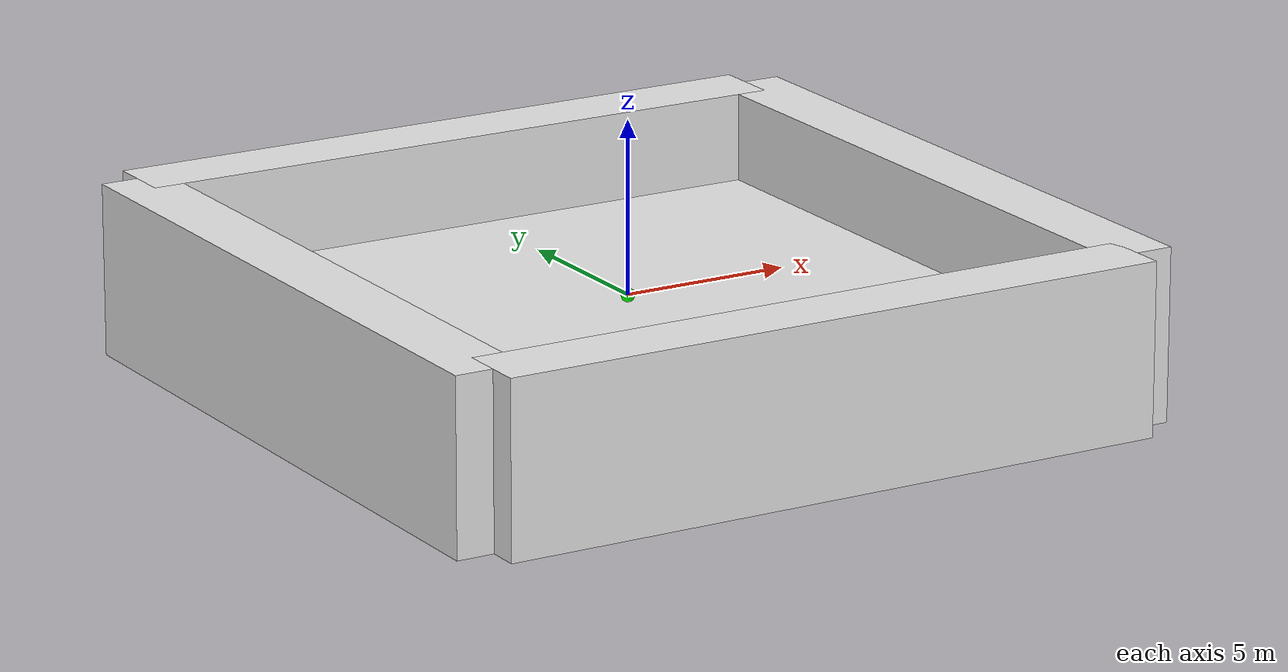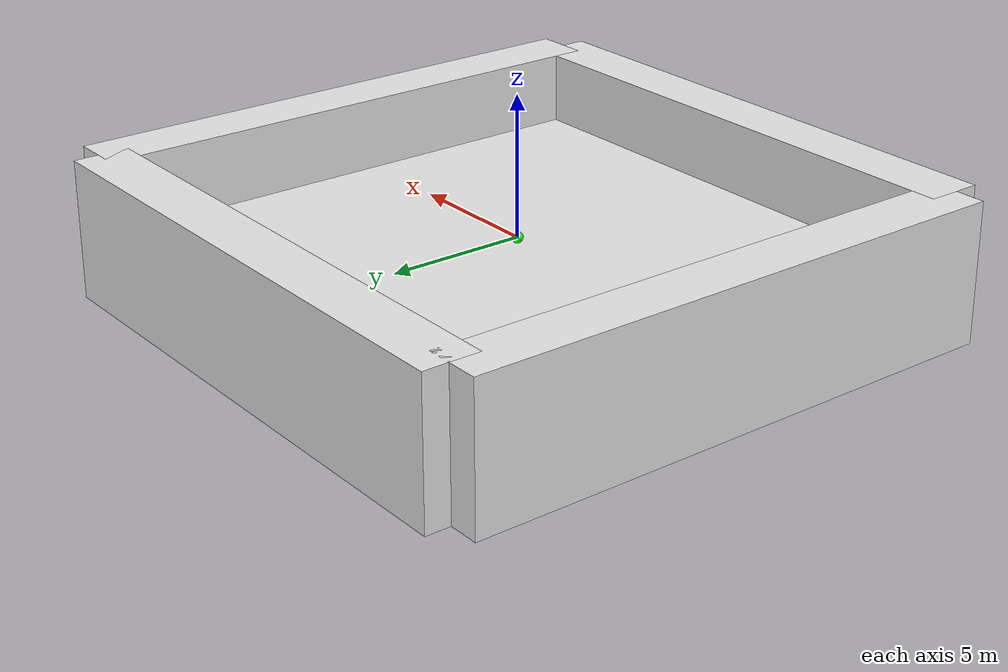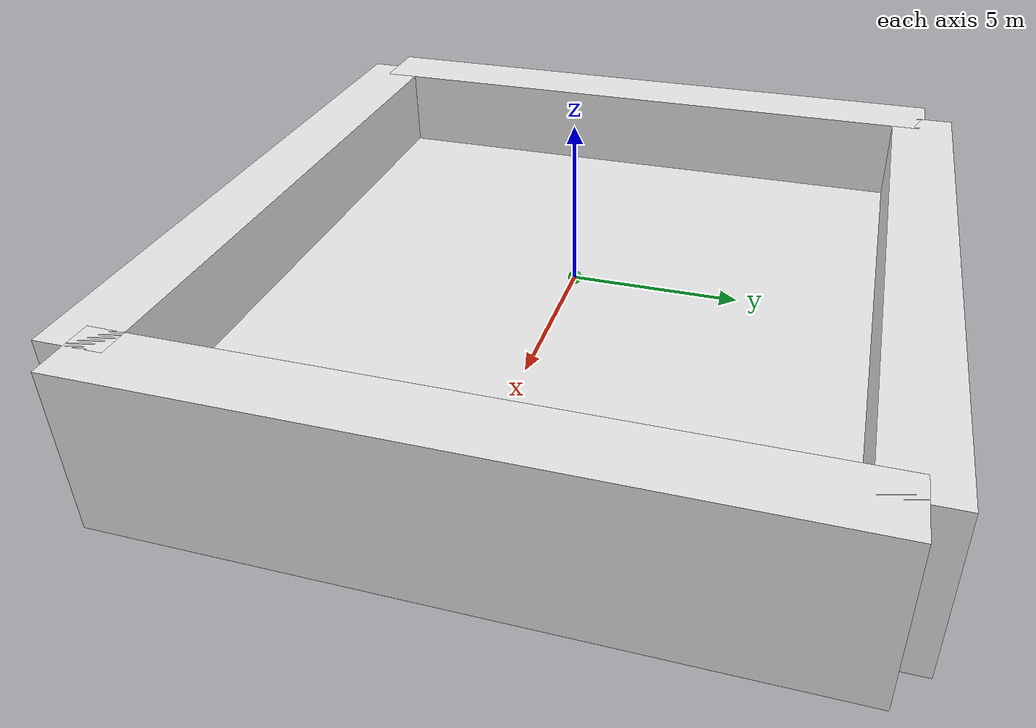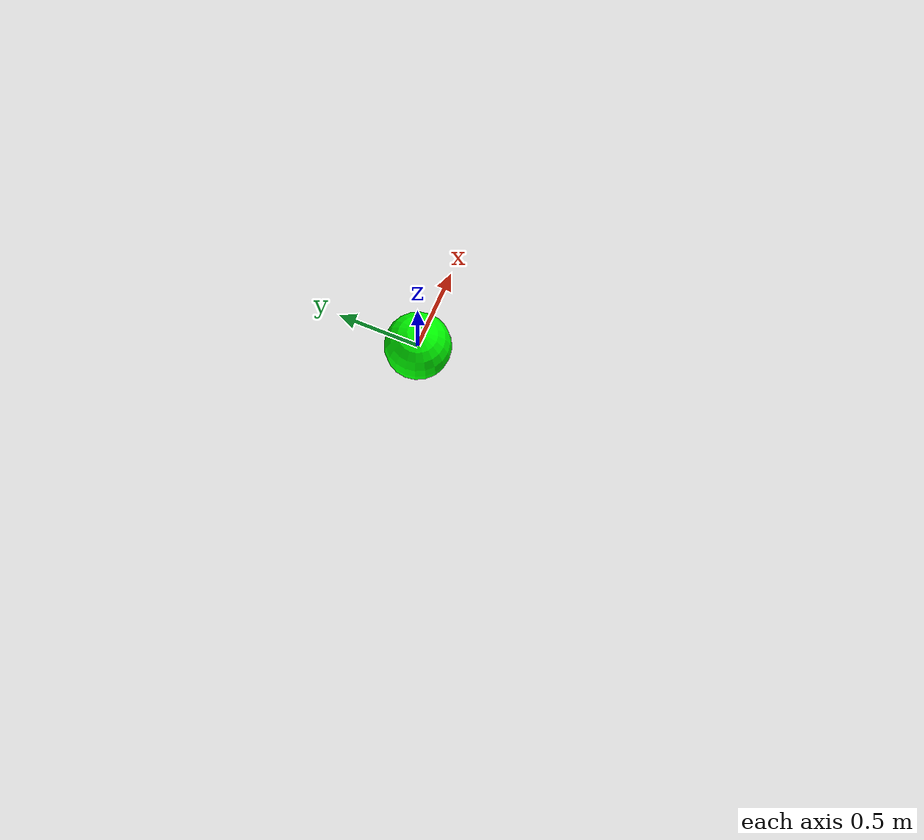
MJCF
<mujoco>
    <option timestep="0.01"/>
　　
<default>
<geom rgba="0 0 0 1"/>
</default>
    <worldbody>
    <light diffuse=".2 .2 .2" pos="0 0 20" dir="0 0 -1" mode="track"/>
    <body >
      <geom name='floor' pos='0 0 -1.3' size='10 10 1' mass="10000" type='box' condim='3' rgba=".9 .9 .9 1"/>
        <camera name="center" mode="fixed" pos="0 0 30" />
    </body>
    <body name='wall1'>
      <geom name='wall1' pos='-10.1 0 -0.2' size='1 10.1 2.5' mass="10000" type='box' condim='3' rgba=".9 .9 .9 1"/>
    </body>
    <body name='wall2'>
      <geom name='wall2' pos='10.1 0 -0.2' size='1 10.1 2.5' mass="10000" type='box' condim='3' rgba=".9 .9 .9 1"/>
    </body>
    <body name='wall3'>
      <geom name='wall3' pos='0 -10 -0.2' size='10 1 2.5' mass="10000" type='box' condim='3' rgba=".9 .9 .9 1"/>
    </body>
    <body name='wall4'>
      <geom name='wall4' pos='0 10 -0.2' size='10 1 2.5' mass="10000" type='box' condim='3' rgba=".9 .9 .9 1"/>
    </body>
    <body name="prey" pos="0 0 0">
            <joint axis="1 0 0" damping="1" name="prey0" pos="0 0 0" type="slide"/>
            <joint axis="0 1 0" damping="1" name="prey1" pos="0 0 0" type="slide"/>
      	    <joint axis="0 0 1" damping="1" name="prey2" pos="0 0 0" type="slide"/>
            <geom type="sphere" size="0.2" name="prey" mass="8" rgba="0 1 0 1"/>
        　　<site name="prey" pos="0 0 0" type="sphere" size="0.01"/>
　　　　</body>
    <body name="predator" pos="0 0 0">
            <joint axis="1 0 0" damping="1" name="predator0" pos="0 0 0" type="slide"/>
            <joint axis="0 1 0" damping="1" name="predator1" pos="0 0 0" type="slide"/>
      	    <joint axis="0 0 1" damping="1" name="predator2" pos="0 0 0" type="slide"/>
            <geom type="sphere" size="0.2" name="predator" mass="10" rgba="1 0 0 1"/>
            <site name="predator" pos="0 0 0" type="sphere" size="0.01"/>
        </body>
    <body name="dragger" pos="0 0 0">
            <joint axis="1 0 0" damping="0" name="dragger0" pos="0 0 0" type="slide"/>
            <joint axis="0 1 0" damping="0" name="dragger1" pos="0 0 0" type="slide"/>
            <joint axis="0 0 1" damping="0" name="dragger2" pos="0 0 0" type="slide"/>
            <geom type="sphere" size="0.2" name="dragger" mass="10" rgba="0 0 1 1"/>
        <site name="dragger" pos="0 0 0" type="sphere" size="0.01"/>
        </body>

<!--site part-->
    <body name="middle1" pos="0 0 0">
        <joint axis="1 0 0" damping="0" name="middle1x" pos="0 0 0" type="slide"/>
        <joint axis="0 1 0" damping="0" name="middle1y" pos="0 0 0" type="slide"/>
	<joint axis="0 0 1" damping="0" name="middle1z" pos="0 0 0" type="slide"/>
        <geom type="sphere" size="0.01" name="middle1" mass="0.1" rgba="0 .9 0 1"/>
        <site name="middle1" pos="0 0 0" type="sphere" size="0.01"/>
    </body>
    <body name="middle2" pos="0 0 0">
        <joint axis="1 0 0" damping="0" name="middle2x" pos="0 0 0" type="slide"/>
        <joint axis="0 1 0" damping="0" name="middle2y" pos="0 0 0" type="slide"/>
	<joint axis="0 0 1" damping="0" name="middle2z" pos="0 0 0" type="slide"/>
        <geom type="sphere" size="0.01" name="middle2" mass="0.1" rgba="0 .9 0 1"/>
        <site name="middle2" pos="0 0 0" type="sphere" size="0.01"/>
    </body>
    <body name="middle3" pos="0 0 0">
        <joint axis="1 0 0" damping="0" name="middle3x" pos="0 0 0" type="slide"/>
        <joint axis="0 1 0" damping="0" name="middle3y" pos="0 0 0" type="slide"/>
	<joint axis="0 0 1" damping="0" name="middle3z" pos="0 0 0" type="slide"/>
	<geom type="sphere" size="0.01" name="middle3" mass="0.1" rgba="0 .9 0 1"/>
        <site name="middle3" pos="0 0 0" type="sphere" size="0.01"/>
    </body>
    <body name="middle4" pos="0 0 0">
        <joint axis="1 0 0" damping="0" name="middle4x" pos="0 0 0" type="slide"/>
        <joint axis="0 1 0" damping="0" name="middle4y" pos="0 0 0" type="slide"/>
	<joint axis="0 0 1" damping="0" name="middle4z" pos="0 0 0" type="slide"/>
	<geom type="sphere" size="0.01" name="middle4" mass="0.1" rgba="0 .9 0 1"/>
        <site name="middle4" pos="0 0 0" type="sphere" size="0.01"/>
    </body>
        <body name="middle5" pos="0 0 0">
        <joint axis="1 0 0" damping="0" name="middle5x" pos="0 0 0" type="slide"/>
        <joint axis="0 1 0" damping="0" name="middle5y" pos="0 0 0" type="slide"/>
	<joint axis="0 0 1" damping="0" name="middle5z" pos="0 0 0" type="slide"/>
	<geom type="sphere" size="0.01" name="middle5" mass="0.1" rgba="0 .9 0 1"/>
        <site name="middle5" pos="0 0 0" type="sphere" size="0.01"/>
    </body>
    <body name="middle6" pos="0 0 0">
        <joint axis="1 0 0" damping="0" name="middle6x" pos="0 0 0" type="slide"/>
        <joint axis="0 1 0" damping="0" name="middle6y" pos="0 0 0" type="slide"/>
	<joint axis="0 0 1" damping="0" name="middle6z" pos="0 0 0" type="slide"/>
        <geom type="sphere" size="0.01" name="middle6" mass="0.1" rgba="0 .9 0 1"/>
        <site name="middle6" pos="0 0 0" type="sphere" size="0.01"/>
    </body>
    <body name="middle7" pos="0 0 0">
        <joint axis="1 0 0" damping="0" name="middle7x" pos="0 0 0" type="slide"/>
        <joint axis="0 1 0" damping="0" name="middle7y" pos="0 0 0" type="slide"/>
	<joint axis="0 0 1" damping="0" name="middle7z" pos="0 0 0" type="slide"/>
        <geom type="sphere" size="0.01" name="middle7" mass="0.1" rgba="0 .9 0 1"/>
        <site name="middle7" pos="0 0 0" type="sphere" size="0.01"/>
    </body>
    <body name="middle8" pos="0 0 0">
        <joint axis="1 0 0" damping="0" name="middle8x" pos="0 0 0" type="slide"/>
        <joint axis="0 1 0" damping="0" name="middle8y" pos="0 0 0" type="slide"/>
	<joint axis="0 0 1" damping="0" name="middle8z" pos="0 0 0" type="slide"/>
        <geom type="sphere" size="0.01" name="middle8" mass="0.1" rgba="0 .9 0 1"/>
        <site name="middle8" pos="0 0 0" type="sphere" size="0.01"/>
    </body>
    <body name="middle9" pos="0 0 0">
        <joint axis="1 0 0" damping="0" name="middle9x" pos="0 0 0" type="slide"/>
        <joint axis="0 1 0" damping="0" name="middle9y" pos="0 0 0" type="slide"/>
	<joint axis="0 0 1" damping="0" name="middle9z" pos="0 0 0" type="slide"/>
        <geom type="sphere" size="0.01" name="middle9" mass="0.1" rgba="0 .9 0 1"/>
        <site name="middle9" pos="0 0 0" type="sphere" size="0.01"/>
    </body>
    </worldbody>

<!--tendon part-->
    <tendon>
        <spatial limited="true" range="0 .6" stiffness="10" damping=".65" width="0.01">
            <site site="predator"/>
            <site site="middle1"/>
        </spatial>
    </tendon>
    <tendon>
        <spatial limited="true" range="0 .6" stiffness="10" damping=".65" width="0.01">
            <site site="middle1"/>
            <site site="middle2"/>
        </spatial>
    </tendon>
    <tendon>
        <spatial limited="true" range="0 .6" stiffness="10" damping=".65" width="0.01">
            <site site="middle2"/>
            <site site="middle3"/>
        </spatial>
    </tendon>
    <tendon>
        <spatial limited="true" range="0 .6" stiffness="10" damping=".65" width="0.01">
            <site site="middle3"/>
            <site site="middle4"/>
        </spatial>
    </tendon>
    <tendon>
        <spatial limited="true" range="0 .6" stiffness="10" damping=".65" width="0.01">
            <site site="middle4"/>
            <site site="middle5"/>
        </spatial>
    </tendon>
    <tendon>
        <spatial limited="true" range="0 .6" stiffness="10" damping=".65" width="0.01">
            <site site="middle5"/>
            <site site="middle6"/>
        </spatial>
    </tendon>
    <tendon>
        <spatial limited="true" range="0 .6" stiffness="10" damping=".65" width="0.01">
            <site site="middle6"/>
            <site site="middle7"/>
        </spatial>
    </tendon>
    <tendon>
        <spatial limited="true" range="0 .6" stiffness="10" damping=".65" width="0.01">
            <site site="middle7"/>
            <site site="middle8"/>
        </spatial>
    </tendon>
    <tendon>
        <spatial limited="true" range="0 .6" stiffness="10" damping=".65" width="0.01">
            <site site="middle8"/>
            <site site="middle9"/>
        </spatial>
    </tendon>
    <tendon>
        <spatial limited="true" range="0 .6" stiffness="10" damping=".65" width="0.01">
            <site site="middle9"/>
            <site site="dragger"/>
        </spatial>
    </tendon>

    <actuator>

        <motor gear="10" joint="prey0"/>
        <motor gear="10" joint="prey1"/>
	<motor gear="10" joint="prey2"/>

        <motor gear="10" joint="predator0"/>
        <motor gear="10" joint="predator1"/>
	<motor gear="10" joint="predator2"/>

        <motor gear="10" joint="dragger0"/>
        <motor gear="10" joint="dragger1"/>
	<motor gear="10" joint="dragger2"/>

    </actuator>

    <contact>

        <exclude body1="prey" body2="middle1"/>
        <exclude body1="prey" body2="middle2"/>
        <exclude body1="prey" body2="middle3"/>
        <exclude body1="prey" body2="middle4"/>
        <exclude body1="prey" body2="middle5"/>
        <exclude body1="prey" body2="middle6"/>
        <exclude body1="prey" body2="middle7"/>
        <exclude body1="prey" body2="middle8"/>
        <exclude body1="prey" body2="middle9"/>
        <exclude body1="predator" body2="middle1"/>
        <exclude body1="predator" body2="middle2"/>
        <exclude body1="predator" body2="middle3"/>
        <exclude body1="predator" body2="middle4"/>
        <exclude body1="predator" body2="middle5"/>
        <exclude body1="predator" body2="middle6"/>
        <exclude body1="predator" body2="middle7"/>
        <exclude body1="predator" body2="middle8"/>
        <exclude body1="predator" body2="middle9"/>
        <exclude body1="dragger" body2="middle1"/>
        <exclude body1="dragger" body2="middle2"/>
        <exclude body1="dragger" body2="middle3"/>
        <exclude body1="dragger" body2="middle4"/>
        <exclude body1="dragger" body2="middle5"/>
        <exclude body1="dragger" body2="middle6"/>
        <exclude body1="dragger" body2="middle7"/>
        <exclude body1="dragger" body2="middle8"/>
        <exclude body1="dragger" body2="middle9"/>
        <exclude body1="middle1" body2="middle2"/>
        <exclude body1="middle1" body2="middle3"/>
        <exclude body1="middle1" body2="middle4"/>
        <exclude body1="middle1" body2="middle5"/>
        <exclude body1="middle1" body2="middle6"/>
        <exclude body1="middle1" body2="middle7"/>
        <exclude body1="middle1" body2="middle8"/>
        <exclude body1="middle1" body2="middle9"/>
        <exclude body1="middle2" body2="middle3"/>
        <exclude body1="middle2" body2="middle4"/>
        <exclude body1="middle2" body2="middle5"/>
        <exclude body1="middle2" body2="middle6"/>
        <exclude body1="middle2" body2="middle7"/>
        <exclude body1="middle2" body2="middle8"/>
        <exclude body1="middle2" body2="middle9"/>
        <exclude body1="middle3" body2="middle4"/>
        <exclude body1="middle3" body2="middle5"/>
        <exclude body1="middle3" body2="middle6"/>
        <exclude body1="middle3" body2="middle7"/>
        <exclude body1="middle3" body2="middle8"/>
        <exclude body1="middle3" body2="middle9"/>
        <exclude body1="middle4" body2="middle5"/>
        <exclude body1="middle4" body2="middle6"/>
        <exclude body1="middle4" body2="middle7"/>
        <exclude body1="middle4" body2="middle8"/>
        <exclude body1="middle4" body2="middle9"/>
        <exclude body1="middle5" body2="middle6"/>
        <exclude body1="middle5" body2="middle7"/>
        <exclude body1="middle5" body2="middle8"/>
        <exclude body1="middle5" body2="middle9"/>
        <exclude body1="middle6" body2="middle7"/>
        <exclude body1="middle6" body2="middle8"/>
        <exclude body1="middle6" body2="middle9"/>
        <exclude body1="middle7" body2="middle8"/>
        <exclude body1="middle7" body2="middle9"/>
        <exclude body1="middle8" body2="middle9"/>
    </contact>

</mujoco>
